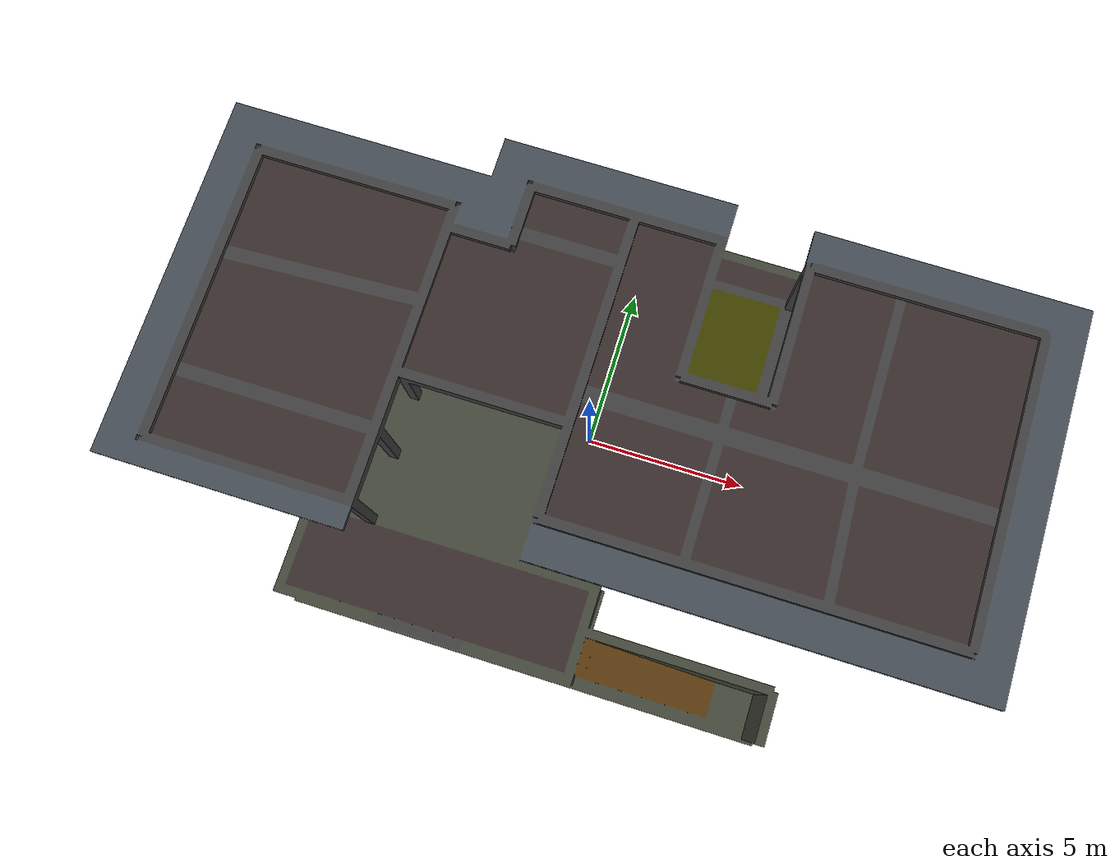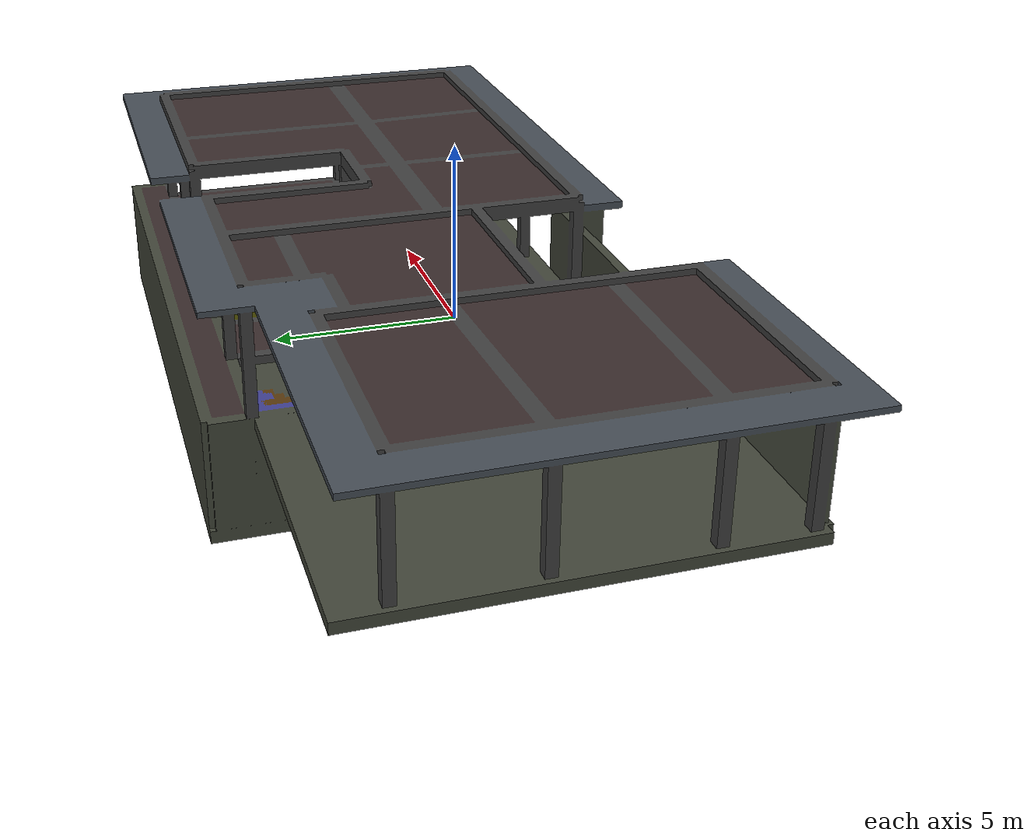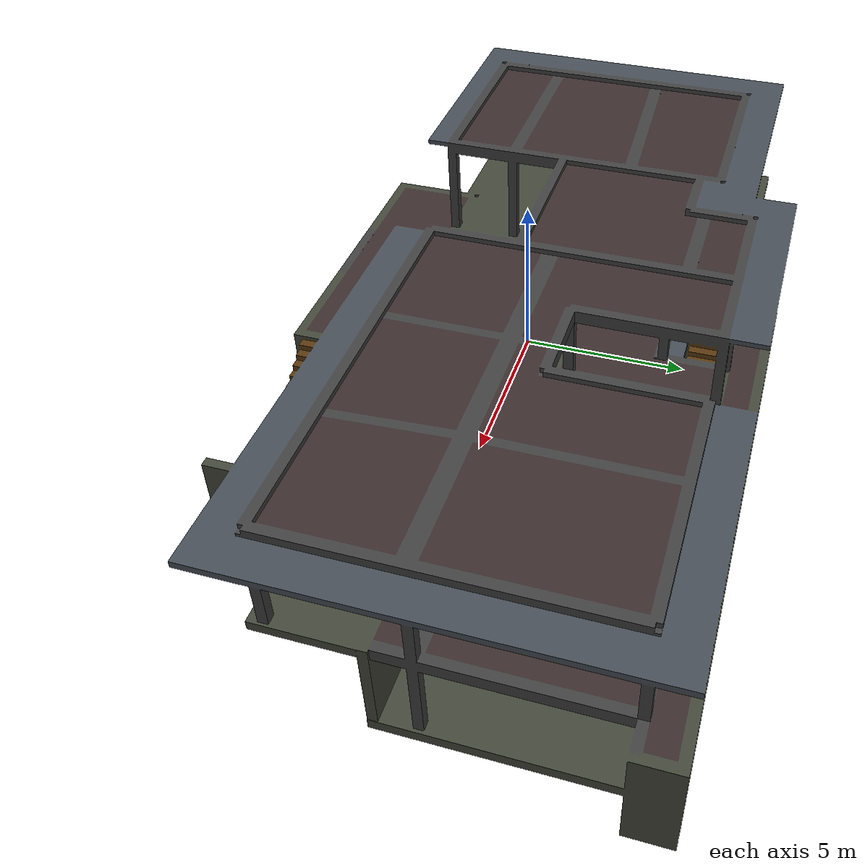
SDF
<?xml version="1.0" ?>
<sdf version="1.6">
  <world name="cantamessa">
    <physics name="1ms" type="ignored">
      <max_step_size>0.001</max_step_size>
      <real_time_factor>1.0</real_time_factor>
    </physics>
    <plugin filename="gz-sim-physics-system"
            name="gz::sim::systems::Physics"/>
    <plugin filename="gz-sim-sensors-system"
            name="gz::sim::systems::Sensors">
      <render_engine>ogre2</render_engine>
    </plugin>
    <plugin filename="gz-sim-user-commands-system"
            name="gz::sim::systems::UserCommands"/>
    <plugin filename="gz-sim-scene-broadcaster-system"
            name="gz::sim::systems::SceneBroadcaster"/>
    <plugin filename="xbot2_gz_clock"
            name="gz::sim::systems::GzClockPlugin"/>

    <light type="directional" name="sun">
      <cast_shadows>true</cast_shadows>
      <pose>0 0 10 0 0 0</pose>
      <diffuse>0.8 0.8 0.8 1</diffuse>
      <specular>0.2 0.2 0.2 1</specular>
      <attenuation>
        <range>1000</range>
        <constant>0.9</constant>
        <linear>0.01</linear>
        <quadratic>0.001</quadratic>
      </attenuation>
      <direction>-0.5 0.1 -0.9</direction>
    </light>

    <include>
      <uri>model://bim/cantamessa</uri>
      <pose>0 0 0 0 0 0</pose>
    </include>

  </world>
</sdf>

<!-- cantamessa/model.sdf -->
<sdf version="1.6">
  <model name="cantamessa">
    <static>true</static>
    <link name="link">
      <visual name="visual">
        <geometry>
          <mesh>
            <uri>model://bim/cantamessa/meshes/cantamessa.dae</uri>
            <scale>1 1 1</scale>
          </mesh>
        </geometry>
      </visual>
      <collision name="collision">
        <geometry>
          <mesh>
            <uri>model://bim/cantamessa/meshes/cantamessa_collision.dae</uri>
            <scale>1 1 1</scale>
          </mesh>
        </geometry>
        <surface>
          <contact>
            <ode>
              <max_vel>0.01</max_vel>
              <min_depth>0.005</min_depth>
            </ode>
          </contact>
        </surface>
      </collision>
    </link>
  </model>
</sdf>
